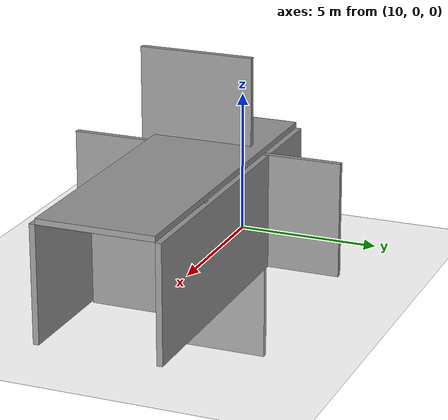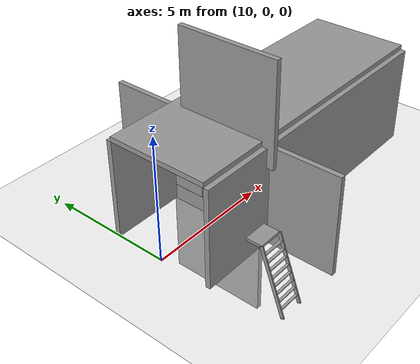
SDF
<sdf version="1.7">
 <world name="default">
  <model name="ground_plane">
   <static>1</static>
   <link name="link">
    <collision name="collision">
     <geometry><plane><normal>0 0 1</normal><size>100 100</size></plane></geometry>
     <surface>
      <contact><collide_bitmask>65535</collide_bitmask></contact>
      <friction><ode><mu>100</mu><mu2>50</mu2></ode></friction>
     </surface>
    </collision>
    <visual name="visual">
     <cast_shadows>0</cast_shadows>
     <geometry><plane><normal>0 0 1</normal><size>100 100</size></plane></geometry>
     <material>
      <script><uri>file://media/materials/scripts/gazebo.material</uri><name>Gazebo/Grey</name></script>
     </material>
    </visual>
   </link>
  </model>
  <model name="grey_wall_0_clone">
   <static>1</static>
   <link name="link">
    <pose>0 0 2 0 -0 0</pose>
    <collision name="collision"><geometry><box><size>0.2 4 4</size></box></geometry></collision>
    <visual name="visual">
     <cast_shadows>0</cast_shadows>
     <geometry><box><size>0.2 4 4</size></box></geometry>
     <material><script><name>vrc/grey_wall</name><uri>__default__</uri></script></material>
    </visual>
   </link>
   <pose>18.1609 0.067045 0 0 -0 0</pose>
  </model>
  <model name="grey_wall_clone_clone">
   <static>1</static>
   <link name="link">
    <pose>0 0 2 0 -0 0</pose>
    <collision name="collision"><geometry><box><size>12 0.2 4</size></box></geometry></collision>
    <visual name="visual">
     <cast_shadows>0</cast_shadows>
     <geometry><box><size>12 0.2 4</size></box></geometry>
     <material><script><name>vrc/grey_wall</name><uri>__default__</uri></script></material>
    </visual>
   </link>
   <pose>16.0069 2.10317 -0.00644 0 -0 0</pose>
  </model>
  <model name="grey_wall_clone_0">
   <static>1</static>
   <link name="link">
    <pose>0 0 2 0 -0 0</pose>
    <collision name="collision"><geometry><box><size>12 0.2 4</size></box></geometry></collision>
    <visual name="visual">
     <cast_shadows>0</cast_shadows>
     <geometry><box><size>12 0.2 4</size></box></geometry>
     <material><script><name>vrc/grey_wall</name><uri>__default__</uri></script></material>
    </visual>
   </link>
   <pose>15.9969 -2.09749 0.00243 0 -0 0</pose>
  </model>
  <model name="grey_wall_0_clone_1_clone">
   <static>1</static>
   <link name="link">
    <pose>0 0 2 0 -0 0</pose>
    <collision name="collision"><geometry><box><size>0.2 4 4</size></box></geometry></collision>
    <visual name="visual">
     <cast_shadows>0</cast_shadows>
     <geometry><box><size>0.2 4 4</size></box></geometry>
     <material><script><name>vrc/grey_wall</name><uri>__default__</uri></script></material>
    </visual>
   </link>
   <pose>13.0714 2.72769 0 0 -0 0</pose>
  </model>
  <model name="grey_wall_0_clone_1_clone_0">
   <static>1</static>
   <link name="link">
    <pose>0 0 2 0 -0 0</pose>
    <collision name="collision"><geometry><box><size>0.2 4 4</size></box></geometry></collision>
    <visual name="visual">
     <cast_shadows>0</cast_shadows>
     <geometry><box><size>0.2 4 4</size></box></geometry>
     <material><script><name>vrc/grey_wall</name><uri>__default__</uri></script></material>
    </visual>
   </link>
   <pose>13.156 -2.91545 0 0 -0 0</pose>
  </model>
  <model name="grey_wall_0_clone_1_clone_0_clone">
   <static>1</static>
   <link name="link">
    <pose>0 0 2 0 -0 0</pose>
    <collision name="collision"><geometry><box><size>0.2 4 4</size></box></geometry></collision>
    <visual name="visual">
     <cast_shadows>0</cast_shadows>
     <geometry><box><size>0.2 4 4</size></box></geometry>
     <material><script><name>vrc/grey_wall</name><uri>__default__</uri></script></material>
    </visual>
   </link>
   <pose>12.9912 -0.468476 3.25039 0 -0 0</pose>
  </model>
  <model name="grey_wall_0_clone_1_clone_0_clone_clone_1">
   <static>1</static>
   <link name="link">
    <pose>0 0 2 0 -0 0</pose>
    <collision name="collision"><geometry><box><size>0.2 4 4</size></box></geometry></collision>
    <visual name="visual">
     <cast_shadows>0</cast_shadows>
     <geometry><box><size>0.2 4 4</size></box></geometry>
     <material><script><name>vrc/grey_wall</name><uri>__default__</uri></script></material>
    </visual>
   </link>
   <pose>13.0698 0.073294 -3.38849 0 -0 0</pose>
  </model>
  <model name="grey_wall_1_clone">
   <static>1</static>
   <link name="link">
    <pose>0 0 2 0 -0 0</pose>
    <collision name="collision"><geometry><box><size>12 4 0.2</size></box></geometry></collision>
    <visual name="visual">
     <cast_shadows>0</cast_shadows>
     <geometry><box><size>12 4 0.2</size></box></geometry>
     <material><script><name>vrc/grey_wall</name><uri>__default__</uri></script></material>
    </visual>
   </link>
   <pose>15.9987 0.00406 2.09857 0 -0 0</pose>
  </model>
  <model name="ladder_70deg_0rails_clone">
   <static>1</static>
   <link name="step0">
    <pose>0 0.097059 0.266667 0 -0 0</pose>
    <inertial>
     <mass>9.75482</mass>
     <inertia>
      <ixx>0.00957124</ixx>
      <iyy>0.65963</iyy>
      <izz>0.666842</izz>
      <ixy>0</ixy>
      <ixz>0</ixz>
      <iyz>0</iyz>
     </inertia>
    </inertial>
    <collision name="collision"><geometry><box><size>0.9 0.1016 0.0381</size></box></geometry></collision>
    <visual name="visual">
     <geometry><box><size>0.9 0.1016 0.0381</size></box></geometry>
     <material>
      <script><uri>file://media/materials/scripts/gazebo.material</uri><name>Gazebo/Grey</name></script>
     </material>
    </visual>
   </link>
   <link name="step1">
    <pose>0 0.194117 0.533333 0 -0 0</pose>
    <inertial>
     <mass>9.75482</mass>
     <inertia>
      <ixx>0.00957124</ixx>
      <iyy>0.65963</iyy>
      <izz>0.666842</izz>
      <ixy>0</ixy>
      <ixz>0</ixz>
      <iyz>0</iyz>
     </inertia>
    </inertial>
    <collision name="collision"><geometry><box><size>0.9 0.1016 0.0381</size></box></geometry></collision>
    <visual name="visual">
     <geometry><box><size>0.9 0.1016 0.0381</size></box></geometry>
     <material>
      <script><uri>file://media/materials/scripts/gazebo.material</uri><name>Gazebo/Grey</name></script>
     </material>
    </visual>
   </link>
   <link name="step2">
    <pose>0 0.291176 0.8 0 -0 0</pose>
    <inertial>
     <mass>9.75482</mass>
     <inertia>
      <ixx>0.00957124</ixx>
      <iyy>0.65963</iyy>
      <izz>0.666842</izz>
      <ixy>0</ixy>
      <ixz>0</ixz>
      <iyz>0</iyz>
     </inertia>
    </inertial>
    <collision name="collision"><geometry><box><size>0.9 0.1016 0.0381</size></box></geometry></collision>
    <visual name="visual">
     <geometry><box><size>0.9 0.1016 0.0381</size></box></geometry>
     <material>
      <script><uri>file://media/materials/scripts/gazebo.material</uri><name>Gazebo/Grey</name></script>
     </material>
    </visual>
   </link>
   <link name="step3">
    <pose>0 0.388235 1.06667 0 -0 0</pose>
    <inertial>
     <mass>9.75482</mass>
     <inertia>
      <ixx>0.00957124</ixx>
      <iyy>0.65963</iyy>
      <izz>0.666842</izz>
      <ixy>0</ixy>
      <ixz>0</ixz>
      <iyz>0</iyz>
     </inertia>
    </inertial>
    <collision name="collision"><geometry><box><size>0.9 0.1016 0.0381</size></box></geometry></collision>
    <visual name="visual">
     <geometry><box><size>0.9 0.1016 0.0381</size></box></geometry>
     <material>
      <script><uri>file://media/materials/scripts/gazebo.material</uri><name>Gazebo/Grey</name></script>
     </material>
    </visual>
   </link>
   <link name="step4">
    <pose>0 0.485294 1.33333 0 -0 0</pose>
    <inertial>
     <mass>9.75482</mass>
     <inertia>
      <ixx>0.00957124</ixx>
      <iyy>0.65963</iyy>
      <izz>0.666842</izz>
      <ixy>0</ixy>
      <ixz>0</ixz>
      <iyz>0</iyz>
     </inertia>
    </inertial>
    <collision name="collision"><geometry><box><size>0.9 0.1016 0.0381</size></box></geometry></collision>
    <visual name="visual">
     <geometry><box><size>0.9 0.1016 0.0381</size></box></geometry>
     <material>
      <script><uri>file://media/materials/scripts/gazebo.material</uri><name>Gazebo/Grey</name></script>
     </material>
    </visual>
   </link>
   <link name="step5">
    <pose>0 0.582352 1.6 0 -0 0</pose>
    <inertial>
     <mass>9.75482</mass>
     <inertia>
      <ixx>0.00957124</ixx>
      <iyy>0.65963</iyy>
      <izz>0.666842</izz>
      <ixy>0</ixy>
      <ixz>0</ixz>
      <iyz>0</iyz>
     </inertia>
    </inertial>
    <collision name="collision"><geometry><box><size>0.9 0.1016 0.0381</size></box></geometry></collision>
    <visual name="visual">
     <geometry><box><size>0.9 0.1016 0.0381</size></box></geometry>
     <material>
      <script><uri>file://media/materials/scripts/gazebo.material</uri><name>Gazebo/Grey</name></script>
     </material>
    </visual>
   </link>
   <link name="step6">
    <pose>0 0.679411 1.86667 0 -0 0</pose>
    <inertial>
     <mass>9.75482</mass>
     <inertia>
      <ixx>0.00957124</ixx>
      <iyy>0.65963</iyy>
      <izz>0.666842</izz>
      <ixy>0</ixy>
      <ixz>0</ixz>
      <iyz>0</iyz>
     </inertia>
    </inertial>
    <collision name="collision"><geometry><box><size>0.9 0.1016 0.0381</size></box></geometry></collision>
    <visual name="visual">
     <geometry><box><size>0.9 0.1016 0.0381</size></box></geometry>
     <material>
      <script><uri>file://media/materials/scripts/gazebo.material</uri><name>Gazebo/Grey</name></script>
     </material>
    </visual>
   </link>
   <link name="step7">
    <pose>0 0.77647 2.13333 0 -0 0</pose>
    <inertial>
     <mass>9.75482</mass>
     <inertia>
      <ixx>0.00957124</ixx>
      <iyy>0.65963</iyy>
      <izz>0.666842</izz>
      <ixy>0</ixy>
      <ixz>0</ixz>
      <iyz>0</iyz>
     </inertia>
    </inertial>
    <collision name="collision"><geometry><box><size>0.9 0.1016 0.0381</size></box></geometry></collision>
    <visual name="visual">
     <geometry><box><size>0.9 0.1016 0.0381</size></box></geometry>
     <material>
      <script><uri>file://media/materials/scripts/gazebo.material</uri><name>Gazebo/Grey</name></script>
     </material>
    </visual>
   </link>
   <link name="landing">
    <pose>0 1.17353 2.4 0 -0 0</pose>
    <inertial>
     <mass>57.6072</mass>
     <inertia><ixx>1.73518</ixx><iyy>3.89545</iyy><izz>5.6167</izz><ixy>0</ixy><ixz>0</ixz><iyz>0</iyz></inertia>
    </inertial>
    <collision name="collision"><geometry><box><size>0.9 0.6 0.1016</size></box></geometry></collision>
    <visual name="visual">
     <geometry><box><size>0.9 0.6 0.1016</size></box></geometry>
     <material>
      <script><uri>file://media/materials/scripts/gazebo.material</uri><name>Gazebo/Grey</name></script>
     </material>
    </visual>
   </link>
   <link name="left_side_wall">
    <pose>-0.45 0.436764 1.2 1.22173 -0 0</pose>
    <collision name="collision"><geometry><box><size>0.0508 2.63403 0.13</size></box></geometry></collision>
    <visual name="visual">
     <geometry><box><size>0.0508 2.63403 0.13</size></box></geometry>
     <material>
      <script><uri>file://media/materials/scripts/gazebo.material</uri><name>Gazebo/Grey</name></script>
     </material>
    </visual>
   </link>
   <link name="right_side_wall">
    <pose>0.45 0.436764 1.2 1.22173 -0 0</pose>
    <collision name="collision"><geometry><box><size>0.0508 2.63403 0.13</size></box></geometry></collision>
    <visual name="visual">
     <geometry><box><size>0.0508 2.63403 0.13</size></box></geometry>
     <material>
      <script><uri>file://media/materials/scripts/gazebo.material</uri><name>Gazebo/Grey</name></script>
     </material>
    </visual>
   </link>
   <pose>10.9223 -4.75146 0 0 -0 0</pose>
  </model>
 </world>
</sdf>
